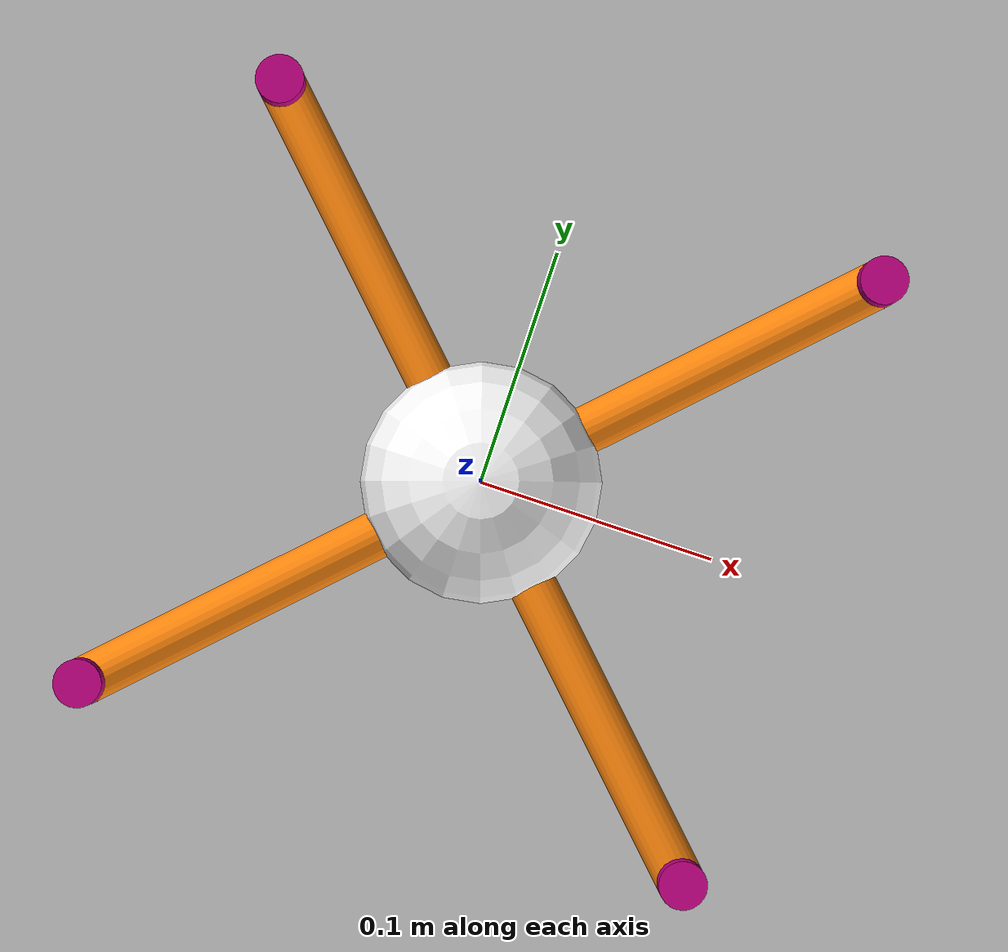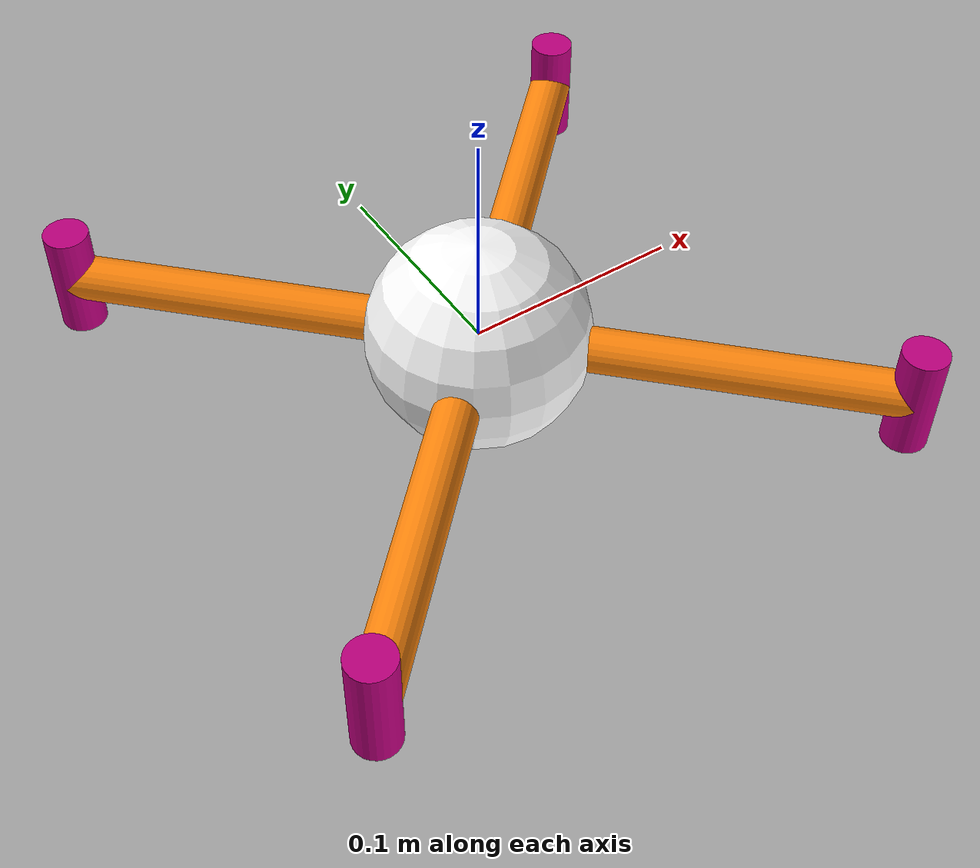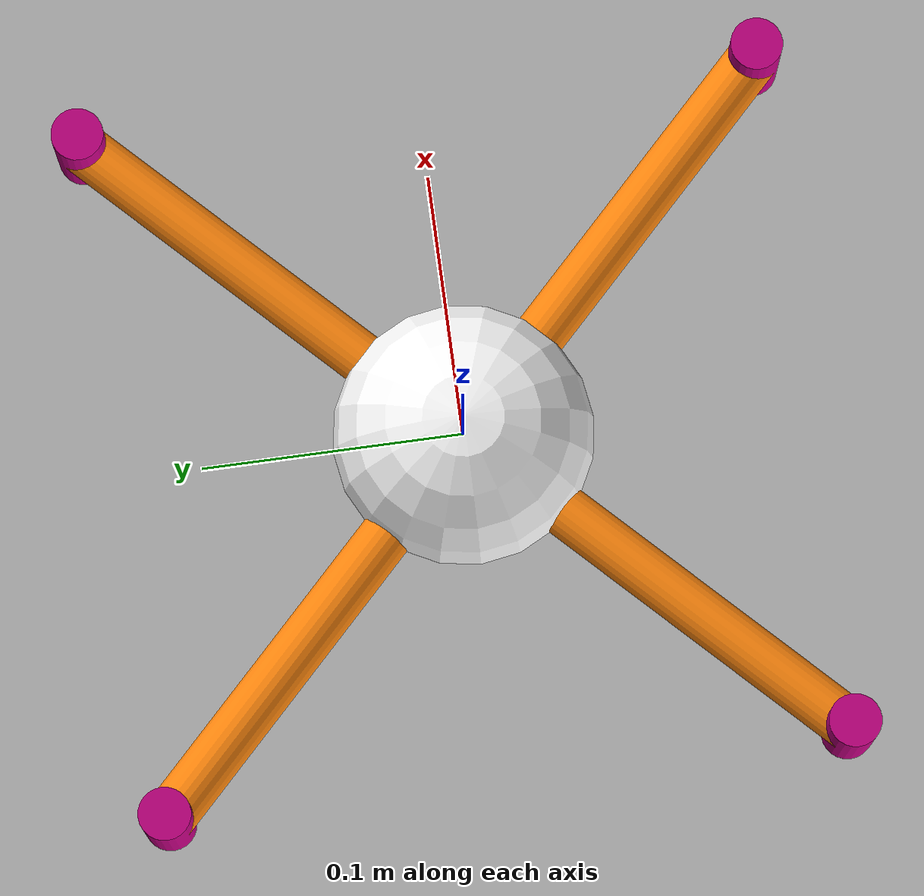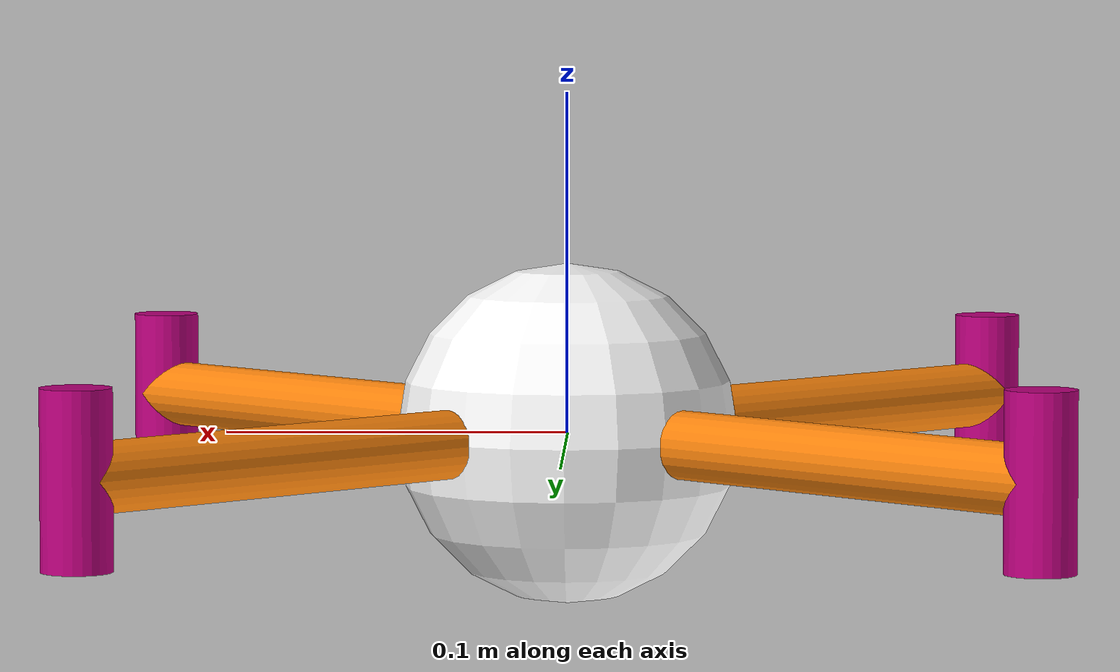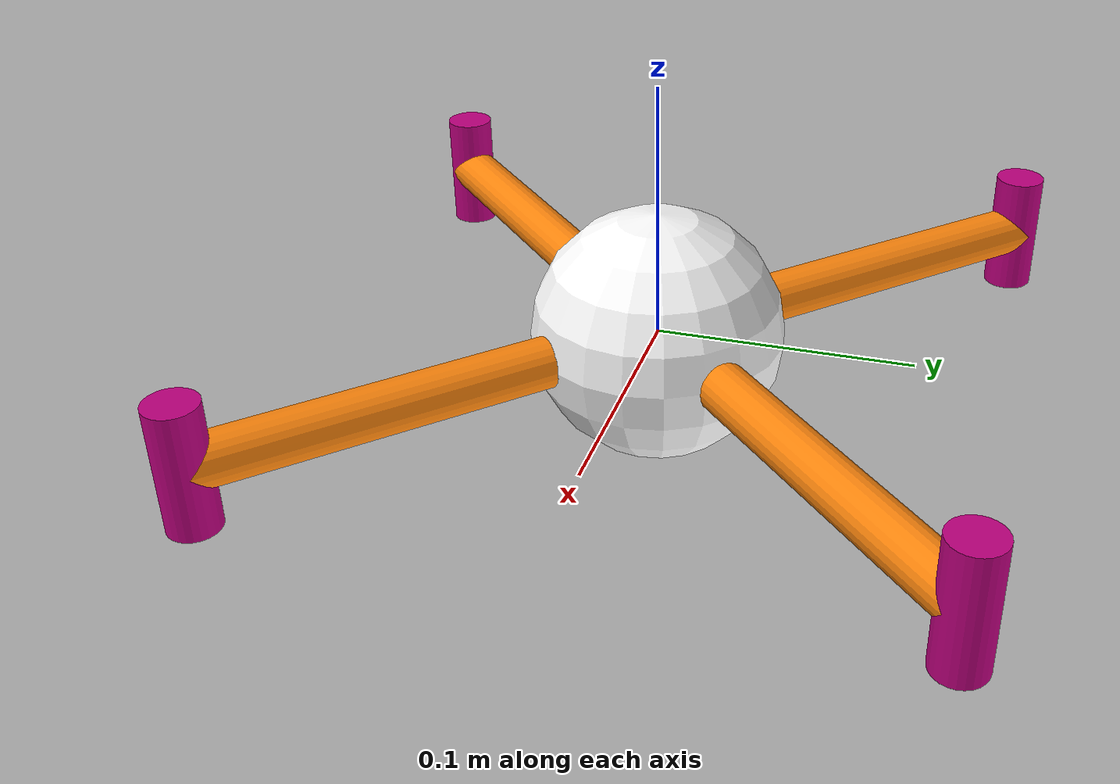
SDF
<sdf version='1.10'>
  <model name='quadrotor'>
    <link name='base_link'>
      <inertial>
        <pose>0 0 0 0 0 0</pose>
        <mass>0.22500000000000001</mass>
        <inertia>
          <ixx>0.00042250000000000002</ixx>
          <ixy>0</ixy>
          <ixz>0</ixz>
          <iyy>0.00042250000000000002</iyy>
          <iyz>0</iyz>
          <izz>0.00084499999999999994</izz>
        </inertia>
      </inertial>
      <collision name='base_link_collision'>
        <pose>0 0 0 0 0 0</pose>
        <geometry>
          <sphere>
            <radius>0.1838477631085024</radius>
          </sphere>
        </geometry>
      </collision>
      <visual name='base_link_visual'>
        <pose>0 0 0 0 0 0</pose>
        <geometry>
          <sphere>
            <radius>0.050000000000000003</radius>
          </sphere>
        </geometry>
        <material>
          <diffuse>1 1 1 1</diffuse>
          <ambient>1 1 1 1</ambient>
        </material>
      </visual>
    </link>
    <joint name='base_link_to_arm_motor_0' type='fixed'>
      <pose relative_to='base_link'>0.065000000000000002 -0.065000000000000002 0 -1.570796326794897 1.1102230246251565e-16 -2.3561944901923448</pose>
      <parent>base_link</parent>
      <child>arm_motor_0</child>
      <axis>
        <dynamics>
          <spring_reference>0</spring_reference>
          <spring_stiffness>0</spring_stiffness>
        </dynamics>
        <xyz>0 0 1</xyz>
        <limit>
          <lower>-inf</lower>
          <upper>inf</upper>
        </limit>
      </axis>
      <physics>
        <ode>
          <limit>
            <cfm>0</cfm>
            <erp>0.20000000000000001</erp>
          </limit>
        </ode>
      </physics>
    </joint>
    <link name='arm_motor_0'>
      <pose relative_to='base_link_to_arm_motor_0'>0 0 0 0 0 0</pose>
      <inertial>
        <pose>0 0 0 0 0 0</pose>
        <mass>9.9999999999999998e-13</mass>
        <inertia>
          <ixx>1e-13</ixx>
          <ixy>0</ixy>
          <ixz>0</ixz>
          <iyy>1e-13</iyy>
          <iyz>0</iyz>
          <izz>1e-13</izz>
        </inertia>
      </inertial>
      <visual name='arm_motor_0_visual'>
        <pose>0 0 0 0 0 0</pose>
        <geometry>
          <cylinder>
            <length>0.1838477631085024</length>
            <radius>0.01</radius>
          </cylinder>
        </geometry>
        <material>
          <diffuse>1 0.528750002 0.0490196086 1</diffuse>
          <ambient>1 0.528750002 0.0490196086 1</ambient>
        </material>
      </visual>
    </link>
    <joint name='base_link_to_arm_motor_1' type='fixed'>
      <pose relative_to='base_link'>-0.065000000000000002 -0.065000000000000002 0 1.570796326794897 1.6653345369377348e-16 -0.78539816339744828</pose>
      <parent>base_link</parent>
      <child>arm_motor_1</child>
      <axis>
        <dynamics>
          <spring_reference>0</spring_reference>
          <spring_stiffness>0</spring_stiffness>
        </dynamics>
        <xyz>0 0 1</xyz>
        <limit>
          <lower>-inf</lower>
          <upper>inf</upper>
        </limit>
      </axis>
      <physics>
        <ode>
          <limit>
            <cfm>0</cfm>
            <erp>0.20000000000000001</erp>
          </limit>
        </ode>
      </physics>
    </joint>
    <link name='arm_motor_1'>
      <pose relative_to='base_link_to_arm_motor_1'>0 0 0 0 0 0</pose>
      <inertial>
        <pose>0 0 0 0 0 0</pose>
        <mass>9.9999999999999998e-13</mass>
        <inertia>
          <ixx>1e-13</ixx>
          <ixy>0</ixy>
          <ixz>0</ixz>
          <iyy>1e-13</iyy>
          <iyz>0</iyz>
          <izz>1e-13</izz>
        </inertia>
      </inertial>
      <visual name='arm_motor_1_visual'>
        <pose>0 0 0 0 0 0</pose>
        <geometry>
          <cylinder>
            <length>0.1838477631085024</length>
            <radius>0.01</radius>
          </cylinder>
        </geometry>
        <material>
          <diffuse>1 0.528750002 0.0490196086 1</diffuse>
          <ambient>1 0.528750002 0.0490196086 1</ambient>
        </material>
      </visual>
    </link>
    <joint name='base_link_to_arm_motor_2' type='fixed'>
      <pose relative_to='base_link'>-0.065000000000000002 0.065000000000000002 0 1.5707963267948972 5.5511151231257827e-17 -2.3561944901923448</pose>
      <parent>base_link</parent>
      <child>arm_motor_2</child>
      <axis>
        <dynamics>
          <spring_reference>0</spring_reference>
          <spring_stiffness>0</spring_stiffness>
        </dynamics>
        <xyz>0 0 1</xyz>
        <limit>
          <lower>-inf</lower>
          <upper>inf</upper>
        </limit>
      </axis>
      <physics>
        <ode>
          <limit>
            <cfm>0</cfm>
            <erp>0.20000000000000001</erp>
          </limit>
        </ode>
      </physics>
    </joint>
    <link name='arm_motor_2'>
      <pose relative_to='base_link_to_arm_motor_2'>0 0 0 0 0 0</pose>
      <inertial>
        <pose>0 0 0 0 0 0</pose>
        <mass>9.9999999999999998e-13</mass>
        <inertia>
          <ixx>1e-13</ixx>
          <ixy>0</ixy>
          <ixz>0</ixz>
          <iyy>1e-13</iyy>
          <iyz>0</iyz>
          <izz>1e-13</izz>
        </inertia>
      </inertial>
      <visual name='arm_motor_2_visual'>
        <pose>0 0 0 0 0 0</pose>
        <geometry>
          <cylinder>
            <length>0.1838477631085024</length>
            <radius>0.01</radius>
          </cylinder>
        </geometry>
        <material>
          <diffuse>1 0.528750002 0.0490196086 1</diffuse>
          <ambient>1 0.528750002 0.0490196086 1</ambient>
        </material>
      </visual>
    </link>
    <joint name='base_link_to_arm_motor_3' type='fixed'>
      <pose relative_to='base_link'>0.065000000000000002 0.065000000000000002 0 -1.570796326794897 -5.5511151231257827e-17 -0.78539816339744839</pose>
      <parent>base_link</parent>
      <child>arm_motor_3</child>
      <axis>
        <dynamics>
          <spring_reference>0</spring_reference>
          <spring_stiffness>0</spring_stiffness>
        </dynamics>
        <xyz>0 0 1</xyz>
        <limit>
          <lower>-inf</lower>
          <upper>inf</upper>
        </limit>
      </axis>
      <physics>
        <ode>
          <limit>
            <cfm>0</cfm>
            <erp>0.20000000000000001</erp>
          </limit>
        </ode>
      </physics>
    </joint>
    <link name='arm_motor_3'>
      <pose relative_to='base_link_to_arm_motor_3'>0 0 0 0 0 0</pose>
      <inertial>
        <pose>0 0 0 0 0 0</pose>
        <mass>9.9999999999999998e-13</mass>
        <inertia>
          <ixx>1e-13</ixx>
          <ixy>0</ixy>
          <ixz>0</ixz>
          <iyy>1e-13</iyy>
          <iyz>0</iyz>
          <izz>1e-13</izz>
        </inertia>
      </inertial>
      <visual name='arm_motor_3_visual'>
        <pose>0 0 0 0 0 0</pose>
        <geometry>
          <cylinder>
            <length>0.1838477631085024</length>
            <radius>0.01</radius>
          </cylinder>
        </geometry>
        <material>
          <diffuse>1 0.528750002 0.0490196086 1</diffuse>
          <ambient>1 0.528750002 0.0490196086 1</ambient>
        </material>
      </visual>
    </link>
    <joint name='base_link_to_motor_0' type='revolute'>
      <pose relative_to='base_link'>0.13 -0.13 0 0 0 0</pose>
      <parent>base_link</parent>
      <child>motor_0</child>
      <axis>
        <dynamics>
          <spring_reference>0</spring_reference>
          <spring_stiffness>0</spring_stiffness>
        </dynamics>
        <xyz>0 0 1</xyz>
        <limit>
          <lower>-inf</lower>
          <upper>inf</upper>
        </limit>
      </axis>
      <physics>
        <ode>
          <limit>
            <cfm>0</cfm>
            <erp>0.20000000000000001</erp>
          </limit>
        </ode>
      </physics>
    </joint>
    <link name='motor_0'>
      <pose relative_to='base_link_to_motor_0'>0 0 0 0 0 0</pose>
      <inertial>
        <pose>0 0 0 0 0 0</pose>
        <mass>0.0062499999999999986</mass>
        <inertia>
          <ixx>1e-13</ixx>
          <ixy>0</ixy>
          <ixz>0</ixz>
          <iyy>1e-13</iyy>
          <iyz>0</iyz>
          <izz>1e-13</izz>
        </inertia>
      </inertial>
      <visual name='motor_0_visual'>
        <pose>0 0 0 0 0 0</pose>
        <geometry>
          <cylinder>
            <length>0.050000000000000003</length>
            <radius>0.01</radius>
          </cylinder>
        </geometry>
        <material>
          <diffuse>0.75000006 0 0.5 1</diffuse>
          <ambient>0.75000006 0 0.5 1</ambient>
        </material>
      </visual>
    </link>
    <joint name='base_link_to_motor_1' type='revolute'>
      <pose relative_to='base_link'>-0.13 -0.13 0 0 0 0</pose>
      <parent>base_link</parent>
      <child>motor_1</child>
      <axis>
        <dynamics>
          <spring_reference>0</spring_reference>
          <spring_stiffness>0</spring_stiffness>
        </dynamics>
        <xyz>0 0 1</xyz>
        <limit>
          <lower>-inf</lower>
          <upper>inf</upper>
        </limit>
      </axis>
      <physics>
        <ode>
          <limit>
            <cfm>0</cfm>
            <erp>0.20000000000000001</erp>
          </limit>
        </ode>
      </physics>
    </joint>
    <link name='motor_1'>
      <pose relative_to='base_link_to_motor_1'>0 0 0 0 0 0</pose>
      <inertial>
        <pose>0 0 0 0 0 0</pose>
        <mass>0.0062499999999999986</mass>
        <inertia>
          <ixx>1e-13</ixx>
          <ixy>0</ixy>
          <ixz>0</ixz>
          <iyy>1e-13</iyy>
          <iyz>0</iyz>
          <izz>1e-13</izz>
        </inertia>
      </inertial>
      <visual name='motor_1_visual'>
        <pose>0 0 0 0 0 0</pose>
        <geometry>
          <cylinder>
            <length>0.050000000000000003</length>
            <radius>0.01</radius>
          </cylinder>
        </geometry>
        <material>
          <diffuse>0.75000006 0 0.5 1</diffuse>
          <ambient>0.75000006 0 0.5 1</ambient>
        </material>
      </visual>
    </link>
    <joint name='base_link_to_motor_2' type='revolute'>
      <pose relative_to='base_link'>-0.13 0.13 0 0 0 0</pose>
      <parent>base_link</parent>
      <child>motor_2</child>
      <axis>
        <dynamics>
          <spring_reference>0</spring_reference>
          <spring_stiffness>0</spring_stiffness>
        </dynamics>
        <xyz>0 0 1</xyz>
        <limit>
          <lower>-inf</lower>
          <upper>inf</upper>
        </limit>
      </axis>
      <physics>
        <ode>
          <limit>
            <cfm>0</cfm>
            <erp>0.20000000000000001</erp>
          </limit>
        </ode>
      </physics>
    </joint>
    <link name='motor_2'>
      <pose relative_to='base_link_to_motor_2'>0 0 0 0 0 0</pose>
      <inertial>
        <pose>0 0 0 0 0 0</pose>
        <mass>0.0062499999999999986</mass>
        <inertia>
          <ixx>1e-13</ixx>
          <ixy>0</ixy>
          <ixz>0</ixz>
          <iyy>1e-13</iyy>
          <iyz>0</iyz>
          <izz>1e-13</izz>
        </inertia>
      </inertial>
      <visual name='motor_2_visual'>
        <pose>0 0 0 0 0 0</pose>
        <geometry>
          <cylinder>
            <length>0.050000000000000003</length>
            <radius>0.01</radius>
          </cylinder>
        </geometry>
        <material>
          <diffuse>0.75000006 0 0.5 1</diffuse>
          <ambient>0.75000006 0 0.5 1</ambient>
        </material>
      </visual>
    </link>
    <joint name='base_link_to_motor_3' type='revolute'>
      <pose relative_to='base_link'>0.13 0.13 0 0 0 0</pose>
      <parent>base_link</parent>
      <child>motor_3</child>
      <axis>
        <dynamics>
          <spring_reference>0</spring_reference>
          <spring_stiffness>0</spring_stiffness>
        </dynamics>
        <xyz>0 0 1</xyz>
        <limit>
          <lower>-inf</lower>
          <upper>inf</upper>
        </limit>
      </axis>
      <physics>
        <ode>
          <limit>
            <cfm>0</cfm>
            <erp>0.20000000000000001</erp>
          </limit>
        </ode>
      </physics>
    </joint>
    <link name='motor_3'>
      <pose relative_to='base_link_to_motor_3'>0 0 0 0 0 0</pose>
      <inertial>
        <pose>0 0 0 0 0 0</pose>
        <mass>0.0062499999999999986</mass>
        <inertia>
          <ixx>1e-13</ixx>
          <ixy>0</ixy>
          <ixz>0</ixz>
          <iyy>1e-13</iyy>
          <iyz>0</iyz>
          <izz>1e-13</izz>
        </inertia>
      </inertial>
      <visual name='motor_3_visual'>
        <pose>0 0 0 0 0 0</pose>
        <geometry>
          <cylinder>
            <length>0.050000000000000003</length>
            <radius>0.01</radius>
          </cylinder>
        </geometry>
        <material>
          <diffuse>0.75000006 0 0.5 1</diffuse>
          <ambient>0.75000006 0 0.5 1</ambient>
        </material>
      </visual>
    </link>
  </model>
</sdf>
